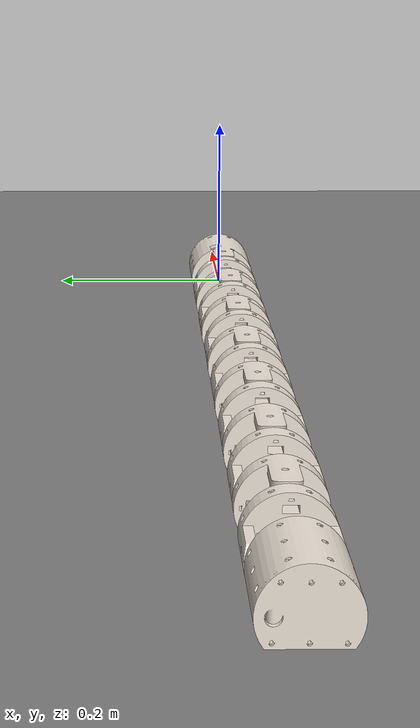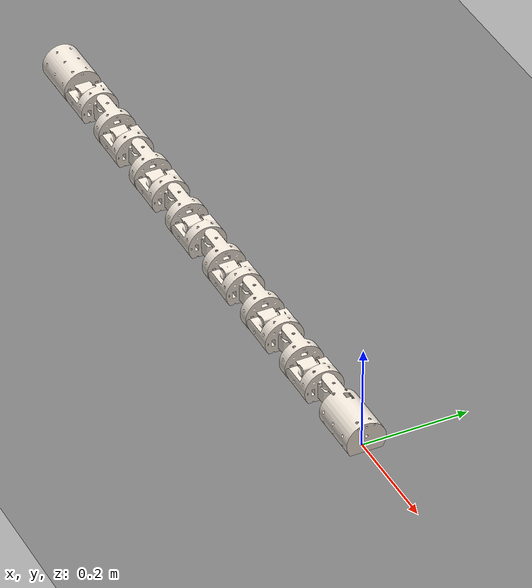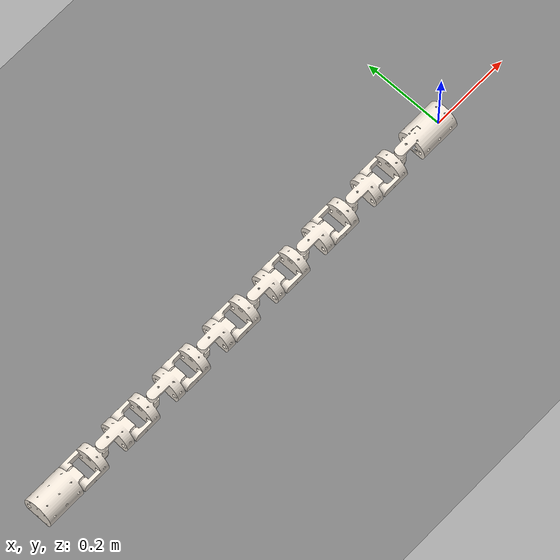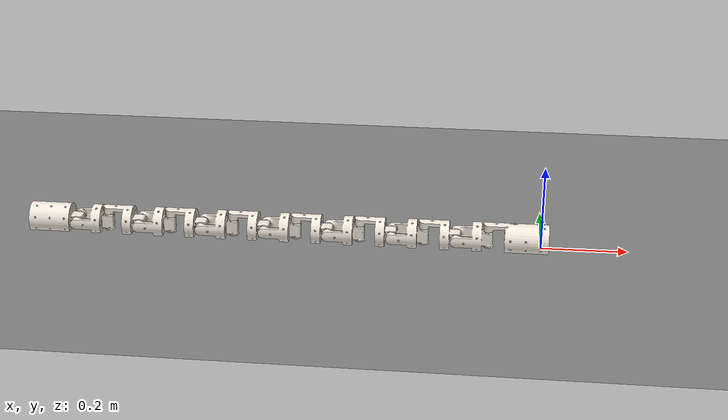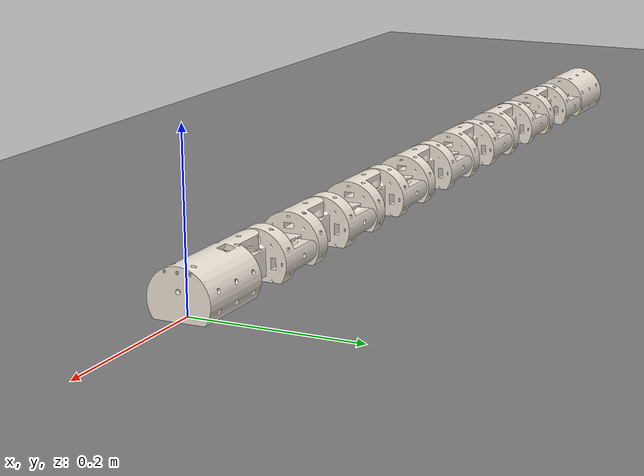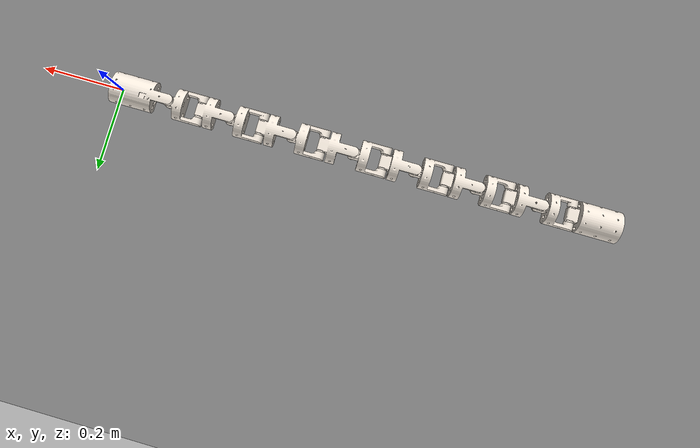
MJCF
<?xml version="1.0"?>

<mujoco model="14DOF-DW">
  <compiler angle="radian" coordinate="local" meshdir="meshes/" />
  <option timestep="0.002" gravity="0 0 -9.81"/>

  <asset>
    <texture type="skybox" builtin="flat" rgb1="1 1 1" rgb2=".9 .9 .9" width="128" height="128" />
    <texture name="floortex" type="2d" builtin="checker" rgb1=".1 .1 .1" rgb2=".9 .9 .9"
      width="512" height="512" mark="cross" markrgb=".8 .8 .8" />

    <!-- 定义材料，引用floortex纹理 -->
    <material name="floortex" texture="floortex" texuniform="true" reflectance="0.3" texrepeat="1 1"/>

    <mesh name="base_link" file="base_link.STL" />
    <mesh name="link1" file="link1.STL" />
    <mesh name="link2" file="link2.STL" />
    <mesh name="link3" file="link3.STL" />
    <mesh name="link4" file="link4.STL" />
    <mesh name="link5" file="link5.STL" />
    <mesh name="link6" file="link6.STL" />
    <mesh name="link7" file="link7.STL" />
    <mesh name="link8" file="link8.STL" />
    <mesh name="link9" file="link9.STL" />
    <mesh name="link10" file="link10.STL" />
    <mesh name="link11" file="link11.STL" />
    <mesh name="link12" file="link12.STL" />
    <mesh name="link13" file="link13.STL" />
    <mesh name="link14" file="link14.STL" />
    <mesh name="lw_link16" file="lw_link16.STL" />
    <mesh name="lw_link17" file="lw_link17.STL" />
    <mesh name="rw_link16" file="rw_link16.STL" />
    <mesh name="rw_link17" file="rw_link17.STL" />
    <mesh name="lw_link15" file="lw_link15.STL" />
    <mesh name="rw_link15" file="rw_link15.STL" />
    <mesh name="lw_link14" file="lw_link14.STL" />
    <mesh name="rw_link14" file="rw_link14.STL" />
    <mesh name="lw_link13" file="lw_link13.STL" />
    <mesh name="rw_link13" file="rw_link13.STL" />
    <mesh name="lw_link12" file="lw_link12.STL" />
    <mesh name="rw_link12" file="rw_link12.STL" />
    <mesh name="lw_link11" file="lw_link11.STL" />
    <mesh name="rw_link11" file="rw_link11.STL" />
    <mesh name="lw_link10" file="lw_link10.STL" />
    <mesh name="rw_link10" file="rw_link10.STL" />
    <mesh name="lw_link9" file="lw_link9.STL" />
    <mesh name="rw_link9" file="rw_link9.STL" />
    <mesh name="lw_link8" file="lw_link8.STL" />
    <mesh name="rw_link8" file="rw_link8.STL" />
    <mesh name="lw_link7" file="lw_link7.STL" />
    <mesh name="rw_link7" file="rw_link7.STL" />
    <mesh name="lw_link6" file="lw_link6.STL" />
    <mesh name="rw_link6" file="rw_link6.STL" />
    <mesh name="lw_link5" file="lw_link5.STL" />
    <mesh name="rw_link5" file="rw_link5.STL" />
    <mesh name="lw_link4" file="lw_link4.STL" />
    <mesh name="rw_link4" file="rw_link4.STL" />
    <mesh name="lw_link3" file="lw_link3.STL" />
    <mesh name="rw_link3" file="rw_link3.STL" />
    <mesh name="lw_link1" file="lw_link1.STL" />
    <mesh name="lw_link2" file="lw_link2.STL" />
    <mesh name="rw_link1" file="rw_link1.STL" />
    <mesh name="rw_link2" file="rw_link2.STL" />
    <material name="base_link_mat" rgba="0.95 0.91 0.86 1" specular="0" />
    <material name="link1_mat" rgba="0.95 0.91 0.86 1" specular="0" />
    <material name="link2_mat" rgba="0.95 0.91 0.86 1" specular="0" />
    <material name="link3_mat" rgba="0.95 0.91 0.86 1" specular="0" />
    <material name="link4_mat" rgba="0.95 0.91 0.86 1" specular="0" />
    <material name="link5_mat" rgba="0.95 0.91 0.86 1" specular="0" />
    <material name="link6_mat" rgba="0.95 0.91 0.86 1" specular="0" />
    <material name="link7_mat" rgba="0.95 0.91 0.86 1" specular="0" />
    <material name="link8_mat" rgba="0.95 0.91 0.86 1" specular="0" />
    <material name="link9_mat" rgba="0.95 0.91 0.86 1" specular="0" />
    <material name="link10_mat" rgba="0.95 0.91 0.86 1" specular="0" />
    <material name="link11_mat" rgba="0.95 0.91 0.86 1" specular="0" />
    <material name="link12_mat" rgba="0.95 0.91 0.86 1" specular="0" />
    <material name="link13_mat" rgba="0.95 0.91 0.86 1" specular="0" />
    <material name="link14_mat" rgba="0.95 0.91 0.86 1" specular="0" />
    <material name="lw_link16_mat" rgba="0 0 0 1" specular="0" />
    <material name="lw_link17_mat" rgba="0 0 0 1" specular="0" />
    <material name="rw_link16_mat" rgba="0 0 0 1" specular="0" />
    <material name="rw_link17_mat" rgba="0 0 0 1" specular="0" />
    <material name="lw_link15_mat" rgba="0 0 0 1" specular="0" />
    <material name="rw_link15_mat" rgba="0 0 0 1" specular="0" />
    <material name="lw_link14_mat" rgba="0 0 0 1" specular="0" />
    <material name="rw_link14_mat" rgba="0 0 0 1" specular="0" />
    <material name="lw_link13_mat" rgba="0 0 0 1" specular="0" />
    <material name="rw_link13_mat" rgba="0 0 0 1" specular="0" />
    <material name="lw_link12_mat" rgba="0 0 0 1" specular="0" />
    <material name="rw_link12_mat" rgba="0 0 0 1" specular="0" />
    <material name="lw_link11_mat" rgba="0 0 0 1" specular="0" />
    <material name="rw_link11_mat" rgba="0 0 0 1" specular="0" />
    <material name="lw_link10_mat" rgba="0 0 0 1" specular="0" />
    <material name="rw_link10_mat" rgba="0 0 0 1" specular="0" />
    <material name="lw_link9_mat" rgba="0 0 0 1" specular="0" />
    <material name="rw_link9_mat" rgba="0 0 0 1" specular="0" />
    <material name="lw_link8_mat" rgba="0 0 0 1" specular="0" />
    <material name="rw_link8_mat" rgba="0 0 0 1" specular="0" />
    <material name="lw_link7_mat" rgba="0 0 0 1" specular="0" />
    <material name="rw_link7_mat" rgba="0 0 0 1" specular="0" />
    <material name="lw_link6_mat" rgba="0 0 0 1" specular="0" />
    <material name="rw_link6_mat" rgba="0 0 0 1" specular="0" />
    <material name="lw_link5_mat" rgba="0 0 0 1" specular="0" />
    <material name="rw_link5_mat" rgba="0 0 0 1" specular="0" />
    <material name="lw_link4_mat" rgba="0 0 0 1" specular="0" />
    <material name="rw_link4_mat" rgba="0 0 0 1" specular="0" />
    <material name="lw_link3_mat" rgba="0 0 0 1" specular="0" />
    <material name="rw_link3_mat" rgba="0 0 0 1" specular="0" />
    <material name="lw_link1_mat" rgba="0 0 0 1" specular="0" />
    <material name="lw_link2_mat" rgba="0 0 0 1" specular="0" />
    <material name="rw_link1_mat" rgba="0 0 0 1" specular="0" />
    <material name="rw_link2_mat" rgba="0 0 0 1" specular="0" />
  </asset>

  <default>
    <default class="sts3215">
        <geom contype="0" conaffinity="0"/>
        <joint damping="0.60" frictionloss="0.052" armature="0.028"/>
        <position kp="17.8" kv="0.0" forcerange="-3.35 3.35"/>
    </default>
  </default>

  <worldbody>
    <!-- 地板 -->
    <geom name="floor" pos="0 0 0" size="10 10 .1" type="plane" material="floortex"
               condim="3" friction="0.8 0.1 0.1" density="0"/>
    <light directional="true" ambient=".3 .3 .3" pos="30 30 30" dir="0 -2 -1" diffuse=".5 .5 .5" specular=".5 .5 .5" />

    <!-- 蛇头 -->
    <body name="base_link" pos="0 0 0">
      <freejoint name="root_free"/>
      <inertial pos="-0.041134 -0.0002028 0.018962" mass="0.2198141" fullinertia="0.000069509 0.0002225 0.00026269 -0.0000000254 0.0000014287 -0.0000007786"/>
      <geom pos="0 0 0" group="1" contype="0" conaffinity="0" material="base_link_mat" type="mesh" mesh="base_link" />
      <geom pos="0 0 0" rgba="0.9373 0.2667 0.2667 1" group="3" contype="1" conaffinity="1" type="mesh" mesh="base_link" />
      <body name="link1" pos="-0.1240009 -0.0000155 0.0017799" quat="0.9999905 0.0043633 0 0">
        <joint name="yaw1" type="hinge" axis="0 0 1" limited="true" range="-1.57 1.57" damping="0.6" frictionloss="0.052"/>
        <inertial pos="-0.0330591 0.0001433 0.0179183" mass="0.1155196" fullinertia="0.0000632841 0.0000571429 0.0000713913 -0.0000000058 0.0000000989 -0.0000000003"/>
        <geom pos="0 0 0" group="1" contype="0" conaffinity="0" material="link1_mat" type="mesh" mesh="link1" />
        <geom pos="0 0 0" rgba="0.9373 0.2667 0.2667 1" group="3" contype="1" conaffinity="1" type="mesh" mesh="link1" />
        <body name="link2" pos="-0.07581 0.0183 0.01885" quat="0.7071001 0.7071001 0.0030853 0.0030853">
          <joint name="pitch1" type="hinge" axis="-0.0087265 0 0.9999619" limited="true" range="-1.57 1.57" damping="0.6" frictionloss="0.052"/>
          <inertial pos="-0.0321044 0.0006098 0.0179205" mass="0.11123" fullinertia="0.0000631062 0.0000543101 0.0000687183 0.0000000023 0.0000000501 -0.0000000003"/>
          <geom pos="0 0 0" group="1" contype="0" conaffinity="0" material="link2_mat" type="mesh" mesh="link2" />
          <geom pos="0 0 0" rgba="0.9373 0.2667 0.2667 1" group="3" contype="1" conaffinity="1" type="mesh" mesh="link2" />
          <body name="link3" pos="-0.0759716 -0.01885 0.0181877" quat="0.7040147 -0.7101583 -0.0000001 -0.0061973">
            <joint name="yaw2" type="hinge" axis="-0.0087259 -0.0087265 0.9999239" limited="true" range="-1.57 1.57" damping="0.6" frictionloss="0.052"/>
            <inertial pos="-0.0332143 0.0004869 0.017634" mass="0.1155196" fullinertia="0.000063283 0.000057144 0.0000713913 -0.0000000056 0.0000000281 -0.0000001247"/>
            <geom pos="0 0 0" group="1" contype="0" conaffinity="0" material="link3_mat" type="mesh" mesh="link3" />
            <geom pos="0 0 0" rgba="0.9373 0.2667 0.2667 1" group="3" contype="1" conaffinity="1" type="mesh" mesh="link3" />
            <body name="link4" pos="-0.075973 0.0186848 0.0183515" quat="0.7040147 0.7101583 0.0000001 0.0061973">
              <joint name="pitch2" type="hinge" axis="-0.0087265 0 0.9999619" limited="true" range="-1.57 1.57" damping="0.6" frictionloss="0.052"/>
              <inertial pos="-0.0321044 0.0006098 0.0179205" mass="0.11123" fullinertia="0.0000631062 0.0000543101 0.0000687183 0.0000000023 0.0000000501 -0.0000000003"/>
              <geom pos="0 0 0" group="1" contype="0" conaffinity="0" material="link4_mat" type="mesh" mesh="link4" />
              <geom pos="0 0 0" rgba="0.9373 0.2667 0.2667 1" group="3" contype="1" conaffinity="1" type="mesh" mesh="link4" />
              <body name="link5" pos="-0.0759716 -0.01885 0.0181877" quat="0.7040147 -0.7101583 -0.0000001 -0.0061973">
                <joint name="yaw3" type="hinge" axis="-0.0087259 -0.0087265 0.9999239" limited="true" range="-1.57 1.57" damping="0.6" frictionloss="0.052"/>
                <inertial pos="-0.0332143 0.0004869 0.017634" mass="0.1155196" fullinertia="0.000063283 0.000057144 0.0000713913 -0.0000000056 0.0000000281 -0.0000001247"/>
                <geom pos="0 0 0" group="1" contype="0" conaffinity="0" material="link5_mat" type="mesh" mesh="link5" />
                <geom pos="0 0 0" rgba="0.9373 0.2667 0.2667 1" group="3" contype="1" conaffinity="1" type="mesh" mesh="link5" />
                <body name="link6" pos="-0.0759696 0.0186883 0.0179544" quat="0.7040147 0.7101583 0.0000001 0.0061973">
                  <joint name="pitch3" type="hinge" axis="-0.0087265 0 0.9999619" limited="true" range="-1.57 1.57" damping="0.6" frictionloss="0.052"/>
                  <inertial pos="-0.0321044 0.001007 0.0179205" mass="0.11123" fullinertia="0.0000631062 0.0000543101 0.0000687183 0.0000000023 0.0000000501 -0.0000000003"/>
                  <geom pos="0 0 0" group="1" contype="0" conaffinity="0" material="link6_mat" type="mesh" mesh="link6" />
                  <geom pos="0 0 0" rgba="0.9373 0.2667 0.2667 1" group="3" contype="1" conaffinity="1" type="mesh" mesh="link6" />
                  <body name="link7" pos="-0.0759716 -0.0184528 0.0181877" quat="0.7040147 -0.7101583 -0.0000001 -0.0061973">
                    <joint name="yaw4" type="hinge" axis="-0.0087259 -0.0087265 0.9999239" limited="true" range="-1.57 1.57" damping="0.6" frictionloss="0.052"/>
                    <inertial pos="-0.0332143 0.0004869 0.017634" mass="0.1155196" fullinertia="0.000063283 0.000057144 0.0000713913 -0.0000000056 0.0000000281 -0.0000001247"/>
                    <geom pos="0 0 0" group="1" contype="0" conaffinity="0" material="link7_mat" type="mesh" mesh="link7" />
                    <geom pos="0 0 0" rgba="0.9373 0.2667 0.2667 1" group="3" contype="1" conaffinity="1" type="mesh" mesh="link7" />
                    <body name="link8" pos="-0.0759696 0.0186883 0.0179544" quat="0.7040147 0.7101583 0.0000001 0.0061973">
                      <joint name="pitch4" type="hinge" axis="-0.0087265 0 0.9999619" limited="true" range="-1.57 1.57" damping="0.6" frictionloss="0.052"/>
                      <inertial pos="-0.0321044 0.001007 0.0179205" mass="0.11123" fullinertia="0.0000631062 0.0000543101 0.0000687183 0.0000000023 0.0000000501 -0.0000000003"/>
                      <geom pos="0 0 0" group="1" contype="0" conaffinity="0" material="link8_mat" type="mesh" mesh="link8" />
                      <geom pos="0 0 0" rgba="0.9373 0.2667 0.2667 1" group="3" contype="1" conaffinity="1" type="mesh" mesh="link8" />
                      <body name="link9" pos="-0.0759716 -0.0184528 0.0181877" quat="0.7040147 -0.7101583 -0.0000001 -0.0061973">
                        <joint name="yaw5" type="hinge" axis="-0.0087259 -0.0087265 0.9999239" limited="true" range="-1.57 1.57" damping="0.6" frictionloss="0.052"/>
                        <inertial pos="-0.0332143 0.0004869 0.017634" mass="0.1155196" fullinertia="0.000063283 0.000057144 0.0000713913 -0.0000000056 0.0000000281 -0.0000001247"/>
                        <geom pos="0 0 0" group="1" contype="0" conaffinity="0" material="link9_mat" type="mesh" mesh="link9" />
                        <geom pos="0 0 0" rgba="0.9373 0.2667 0.2667 1" group="3" contype="1" conaffinity="1" type="mesh" mesh="link9" />
                        <body name="link10" pos="-0.0759696 0.0186883 0.0179544" quat="0.7040147 0.7101583 0.0000001 0.0061973">
                          <joint name="pitch5" type="hinge" axis="-0.0087265 0 0.9999619" limited="true" range="-1.57 1.57" damping="0.6" frictionloss="0.052"/>
                          <inertial pos="-0.0321044 0.001007 0.0179205" mass="0.11123" fullinertia="0.0000631062 0.0000543101 0.0000687183 0.0000000023 0.0000000501 -0.0000000003"/>
                          <geom pos="0 0 0" group="1" contype="0" conaffinity="0" material="link10_mat" type="mesh" mesh="link10" />
                          <geom pos="0 0 0" rgba="0.9373 0.2667 0.2667 1" group="3" contype="1" conaffinity="1" type="mesh" mesh="link10" />
                          <body name="link11" pos="-0.0759716 -0.0184528 0.0181877" quat="0.7040147 -0.7101583 -0.0000001 -0.0061973">
                            <joint name="yaw6" type="hinge" axis="-0.0087259 -0.0087265 0.9999239" limited="true" range="-1.57 1.57" damping="0.6" frictionloss="0.052"/>
                            <inertial pos="-0.0332143 0.0004869 0.017634" mass="0.1155196" fullinertia="0.000063283 0.000057144 0.0000713913 -0.0000000056 0.0000000281 -0.0000001247"/>
                            <geom pos="0 0 0" group="1" contype="0" conaffinity="0" material="link11_mat" type="mesh" mesh="link11" />
                            <geom pos="0 0 0" rgba="0.9373 0.2667 0.2667 1" group="3" contype="1" conaffinity="1" type="mesh" mesh="link11" />
                            <body name="link12" pos="-0.0759696 0.0186883 0.0179544" quat="0.7040147 0.7101583 0.0000001 0.0061973">
                              <joint name="pitch6" type="hinge" axis="-0.0087265 0 0.9999619" limited="true" range="-1.57 1.57" damping="0.6" frictionloss="0.052"/>
                              <inertial pos="-0.0321044 0.001007 0.0179205" mass="0.11123" fullinertia="0.0000631062 0.0000543101 0.0000687183 0.0000000023 0.0000000501 -0.0000000003"/>
                              <geom pos="0 0 0" group="1" contype="0" conaffinity="0" material="link12_mat" type="mesh" mesh="link12" />
                              <geom pos="0 0 0" rgba="0.9373 0.2667 0.2667 1" group="3" contype="1" conaffinity="1" type="mesh" mesh="link12" />
                              <body name="link13" pos="-0.0759716 -0.0184528 0.0181877" quat="0.7040147 -0.7101583 -0.0000001 -0.0061973">
                                <joint name="yaw7" type="hinge" axis="-0.0087259 -0.0087265 0.9999239" limited="true" range="-1.57 1.57" damping="0.6" frictionloss="0.052"/>
                                <inertial pos="-0.0332143 0.0004869 0.017634" mass="0.1155196" fullinertia="0.000063283 0.000057144 0.0000713913 -0.0000000056 0.0000000281 -0.0000001247"/>
                                <geom pos="0 0 0" group="1" contype="0" conaffinity="0" material="link13_mat" type="mesh" mesh="link13" />
                                <geom pos="0 0 0" rgba="0.9373 0.2667 0.2667 1" group="3" contype="1" conaffinity="1" type="mesh" mesh="link13" />
                                <body name="link14" pos="-0.0759696 0.0186883 0.0179544" quat="0.7040147 0.7101583 0.0000001 0.0061973">
                                  <joint name="pitch7" type="hinge" axis="-0.0087265 0 0.9999619" limited="true" range="-1.57 1.57" damping="0.6" frictionloss="0.052"/>
                                  <inertial pos="-0.0622382 0.0019004 0.0184409" mass="0.3486692" fullinertia="0.0001824671 0.0002798143 0.0002726189 0.0000004426 0.0000004295 -0.0000001042"/>
                                  <geom pos="0 0 0" group="1" contype="0" conaffinity="0" material="link14_mat" type="mesh" mesh="link14" />
                                  <geom pos="0 0 0" rgba="0.9373 0.2667 0.2667 1" group="3" contype="1" conaffinity="1" type="mesh" mesh="link14" />
                                  <body name="lw_link16" pos="-0.0268102 -0.0491028 -0.000884" quat="0.704008 -0.7101786 -0.0030718 -0.0030988">
                                    <joint name="lw_joint16" type="hinge" axis="0 0.9999619 0.0087265" damping="0" frictionloss="0"/>
                                    <inertial pos="0 -0.0029332 -0.0000256" mass="0.0014137" fullinertia="0.0000000318 0.0000000526 0.0000000318 0 0 0.0000000002"/>
                                    <geom pos="0 0 0" group="1" contype="0" conaffinity="0" material="lw_link16_mat" type="mesh" mesh="lw_link16" />
                                    <geom pos="0 0 0" rgba="0.9373 0.2667 0.2667 1" group="3" contype="1" conaffinity="1" type="mesh" mesh="lw_link16" />
                                  </body>
                                  <body name="lw_link17" pos="-0.0970937 -0.0491028 -0.0014973" quat="0.704008 -0.7101786 -0.0030718 -0.0030988">
                                    <joint name="lw_joint17" type="hinge" axis="0 0.9999619 0.0087265" damping="0" frictionloss="0"/>
                                    <inertial pos="0 -0.0029332 -0.0000256" mass="0.0014137" fullinertia="0.0000000318 0.0000000526 0.0000000318 0 0 0.0000000002"/>
                                    <geom pos="0 0 0" group="1" contype="0" conaffinity="0" material="lw_link17_mat" type="mesh" mesh="lw_link17" />
                                    <geom pos="0 0 0" rgba="0.9373 0.2667 0.2667 1" group="3" contype="1" conaffinity="1" type="mesh" mesh="lw_link17" />
                                  </body>
                                  <body name="rw_link16" pos="-0.0271506 -0.0491028 0.0381145" quat="0.704008 -0.7101786 -0.0030718 -0.0030988">
                                    <joint name="rw_joint16" type="hinge" axis="0 0.9999619 0.0087265" damping="0" frictionloss="0"/>
                                    <inertial pos="0 0.0029332 0.0000256" mass="0.0014137" fullinertia="0.0000000318 0.0000000526 0.0000000318 0 0 0.0000000002"/>
                                    <geom pos="0 0 0" group="1" contype="0" conaffinity="0" material="rw_link16_mat" type="mesh" mesh="rw_link16" />
                                    <geom pos="0 0 0" rgba="0.9373 0.2667 0.2667 1" group="3" contype="1" conaffinity="1" type="mesh" mesh="rw_link16" />
                                  </body>
                                  <body name="rw_link17" pos="-0.0974341 -0.0491028 0.0375012" quat="0.704008 -0.7101786 -0.0030718 -0.0030988">
                                    <joint name="rw_joint17" type="hinge" axis="0 0.9999619 0.0087265" damping="0" frictionloss="0"/>
                                    <inertial pos="0 0.0029332 0.0000256" mass="0.0014137" fullinertia="0.0000000318 0.0000000526 0.0000000318 0 0 0.0000000002"/>
                                    <geom pos="0 0 0" group="1" contype="0" conaffinity="0" material="rw_link17_mat" type="mesh" mesh="rw_link17" />
                                    <geom pos="0 0 0" rgba="0.9373 0.2667 0.2667 1" group="3" contype="1" conaffinity="1" type="mesh" mesh="rw_link17" />
                                  </body>
                                </body>
                                <body name="lw_link15" pos="-0.0265509 0.0203686 -0.0306034" quat="0.9999905 0 -0.0043631 0">
                                  <joint name="lw_joint15" type="hinge" axis="0 0.9999619 0.0087265" damping="0" frictionloss="0"/>
                                  <inertial pos="0 -0.0029323 -0.0001284" mass="0.0014137" fullinertia="0.0000000318 0.0000000526 0.0000000318 0 0 0.0000000002"/>
                                  <geom pos="0 0 0" group="1" contype="0" conaffinity="0" material="lw_link15_mat" type="mesh" mesh="lw_link15" />
                                  <geom pos="0 0 0" rgba="0.9373 0.2667 0.2667 1" group="3" contype="1" conaffinity="1" type="mesh" mesh="lw_link15" />
                                </body>
                                <body name="rw_link15" pos="-0.0265479 -0.0186299 -0.0309437" quat="0.9999905 0 -0.0043631 0">
                                  <joint name="rw_joint15" type="hinge" axis="0 0.9999619 0.0087265" damping="0" frictionloss="0"/>
                                  <inertial pos="0 0.0029341 -0.0000772" mass="0.0014137" fullinertia="0.0000000318 0.0000000526 0.0000000318 0 0 0.0000000002"/>
                                  <geom pos="0 0 0" group="1" contype="0" conaffinity="0" material="rw_link15_mat" type="mesh" mesh="rw_link15" />
                                  <geom pos="0 0 0" rgba="0.9373 0.2667 0.2667 1" group="3" contype="1" conaffinity="1" type="mesh" mesh="rw_link15" />
                                </body>
                              </body>
                              <body name="lw_link14" pos="-0.0268059 -0.0491028 -0.001384" quat="0.704008 -0.7101786 -0.0030718 -0.0030988">
                                <joint name="lw_joint14" type="hinge" axis="0 0.9999619 0.0087265" damping="0" frictionloss="0"/>
                                <inertial pos="0 -0.0029332 -0.0000256" mass="0.0014137" fullinertia="0.0000000318 0.0000000526 0.0000000318 0 0 0.0000000002"/>
                                <geom pos="0 0 0" group="1" contype="0" conaffinity="0" material="lw_link14_mat" type="mesh" mesh="lw_link14" />
                                <geom pos="0 0 0" rgba="0.9373 0.2667 0.2667 1" group="3" contype="1" conaffinity="1" type="mesh" mesh="lw_link14" />
                              </body>
                              <body name="rw_link14" pos="-0.0271462 -0.0491028 0.0376145" quat="0.704008 -0.7101786 -0.0030718 -0.0030988">
                                <joint name="rw_joint14" type="hinge" axis="0 0.9999619 0.0087265" damping="0" frictionloss="0"/>
                                <inertial pos="0 0.0029332 0.0000256" mass="0.0014137" fullinertia="0.0000000318 0.0000000526 0.0000000318 0 0 0.0000000002"/>
                                <geom pos="0 0 0" group="1" contype="0" conaffinity="0" material="rw_link14_mat" type="mesh" mesh="rw_link14" />
                                <geom pos="0 0 0" rgba="0.9373 0.2667 0.2667 1" group="3" contype="1" conaffinity="1" type="mesh" mesh="rw_link14" />
                              </body>
                            </body>
                            <body name="lw_link13" pos="-0.0265509 0.0203686 -0.0306034" quat="0.9999905 0 -0.0043631 0">
                              <joint name="lw_joint13" type="hinge" axis="0 0.9999619 0.0087265" damping="0" frictionloss="0"/>
                              <inertial pos="0 -0.0029323 -0.0001284" mass="0.0014137" fullinertia="0.0000000318 0.0000000526 0.0000000318 0 0 0.0000000002"/>
                              <geom pos="0 0 0" group="1" contype="0" conaffinity="0" material="lw_link13_mat" type="mesh" mesh="lw_link13" />
                              <geom pos="0 0 0" rgba="0.9373 0.2667 0.2667 1" group="3" contype="1" conaffinity="1" type="mesh" mesh="lw_link13" />
                            </body>
                            <body name="rw_link13" pos="-0.0265479 -0.0186299 -0.0309437" quat="0.9999905 0 -0.0043631 0">
                              <joint name="rw_joint13" type="hinge" axis="0 0.9999619 0.0087265" damping="0" frictionloss="0"/>
                              <inertial pos="0 0.0029341 -0.0000772" mass="0.0014137" fullinertia="0.0000000318 0.0000000526 0.0000000318 0 0 0.0000000002"/>
                              <geom pos="0 0 0" group="1" contype="0" conaffinity="0" material="rw_link13_mat" type="mesh" mesh="rw_link13" />
                              <geom pos="0 0 0" rgba="0.9373 0.2667 0.2667 1" group="3" contype="1" conaffinity="1" type="mesh" mesh="rw_link13" />
                            </body>
                          </body>
                          <body name="lw_link12" pos="-0.0268059 -0.0491028 -0.001384" quat="0.704008 -0.7101786 -0.0030718 -0.0030988">
                            <joint name="lw_joint12" type="hinge" axis="0 0.9999619 0.0087265" damping="0" frictionloss="0"/>
                            <inertial pos="0 -0.0029332 -0.0000256" mass="0.0014137" fullinertia="0.0000000318 0.0000000526 0.0000000318 0 0 0.0000000002"/>
                            <geom pos="0 0 0" group="1" contype="0" conaffinity="0" material="lw_link12_mat" type="mesh" mesh="lw_link12" />
                            <geom pos="0 0 0" rgba="0.9373 0.2667 0.2667 1" group="3" contype="1" conaffinity="1" type="mesh" mesh="lw_link12" />
                          </body>
                          <body name="rw_link12" pos="-0.0271462 -0.0491028 0.0376145" quat="0.704008 -0.7101786 -0.0030718 -0.0030988">
                            <joint name="rw_joint12" type="hinge" axis="0 0.9999619 0.0087265" damping="0" frictionloss="0"/>
                            <inertial pos="0 0.0029332 0.0000256" mass="0.0014137" fullinertia="0.0000000318 0.0000000526 0.0000000318 0 0 0.0000000002"/>
                            <geom pos="0 0 0" group="1" contype="0" conaffinity="0" material="rw_link12_mat" type="mesh" mesh="rw_link12" />
                            <geom pos="0 0 0" rgba="0.9373 0.2667 0.2667 1" group="3" contype="1" conaffinity="1" type="mesh" mesh="rw_link12" />
                          </body>
                        </body>
                        <body name="lw_link11" pos="-0.0265509 0.0203686 -0.0306034" quat="0.9999905 0 -0.0043631 0">
                          <joint name="lw_joint11" type="hinge" axis="0 0.9999619 0.0087265" damping="0" frictionloss="0"/>
                          <inertial pos="0 -0.0029323 -0.0001284" mass="0.0014137" fullinertia="0.0000000318 0.0000000526 0.0000000318 0 0 0.0000000002"/>
                          <geom pos="0 0 0" group="1" contype="0" conaffinity="0" material="lw_link11_mat" type="mesh" mesh="lw_link11" />
                          <geom pos="0 0 0" rgba="0.9373 0.2667 0.2667 1" group="3" contype="1" conaffinity="1" type="mesh" mesh="lw_link11" />
                        </body>
                        <body name="rw_link11" pos="-0.0265479 -0.0186299 -0.0309437" quat="0.9999905 0 -0.0043631 0">
                          <joint name="rw_joint11" type="hinge" axis="0 0.9999619 0.0087265" damping="0" frictionloss="0"/>
                          <inertial pos="0 0.0029341 -0.0000772" mass="0.0014137" fullinertia="0.0000000318 0.0000000526 0.0000000318 0 0 0.0000000002"/>
                          <geom pos="0 0 0" group="1" contype="0" conaffinity="0" material="rw_link11_mat" type="mesh" mesh="rw_link11" />
                          <geom pos="0 0 0" rgba="0.9373 0.2667 0.2667 1" group="3" contype="1" conaffinity="1" type="mesh" mesh="rw_link11" />
                        </body>
                      </body>
                      <body name="lw_link10" pos="-0.0268059 -0.0491028 -0.001384" quat="0.704008 -0.7101786 -0.0030718 -0.0030988">
                        <joint name="lw_joint10" type="hinge" axis="0 0.9999619 0.0087265" damping="0" frictionloss="0"/>
                        <inertial pos="0 -0.0029332 -0.0000256" mass="0.0014137" fullinertia="0.0000000318 0.0000000526 0.0000000318 0 0 0.0000000002"/>
                        <geom pos="0 0 0" group="1" contype="0" conaffinity="0" material="lw_link10_mat" type="mesh" mesh="lw_link10" />
                        <geom pos="0 0 0" rgba="0.9373 0.2667 0.2667 1" group="3" contype="1" conaffinity="1" type="mesh" mesh="lw_link10" />
                      </body>
                      <body name="rw_link10" pos="-0.0271462 -0.0491028 0.0376145" quat="0.704008 -0.7101786 -0.0030718 -0.0030988">
                        <joint name="rw_joint10" type="hinge" axis="0 0.9999619 0.0087265" damping="0" frictionloss="0"/>
                        <inertial pos="0 0.0029332 0.0000256" mass="0.0014137" fullinertia="0.0000000318 0.0000000526 0.0000000318 0 0 0.0000000002"/>
                        <geom pos="0 0 0" group="1" contype="0" conaffinity="0" material="rw_link10_mat" type="mesh" mesh="rw_link10" />
                        <geom pos="0 0 0" rgba="0.9373 0.2667 0.2667 1" group="3" contype="1" conaffinity="1" type="mesh" mesh="rw_link10" />
                      </body>
                    </body>
                    <body name="lw_link9" pos="-0.0265509 0.0203686 -0.0306034" quat="0.9999905 0 -0.0043631 0">
                      <joint name="lw_joint9" type="hinge" axis="0 0.9999619 0.0087265" damping="0" frictionloss="0"/>
                      <inertial pos="0 -0.0029323 -0.0001284" mass="0.0014137" fullinertia="0.0000000318 0.0000000526 0.0000000318 0 0 0.0000000002"/>
                      <geom pos="0 0 0" group="1" contype="0" conaffinity="0" material="lw_link9_mat" type="mesh" mesh="lw_link9" />
                      <geom pos="0 0 0" rgba="0.9373 0.2667 0.2667 1" group="3" contype="1" conaffinity="1" type="mesh" mesh="lw_link9" />
                    </body>
                    <body name="rw_link9" pos="-0.0265479 -0.0186299 -0.0309437" quat="0.9999905 0 -0.0043631 0">
                      <joint name="rw_joint9" type="hinge" axis="0 0.9999619 0.0087265" damping="0" frictionloss="0"/>
                      <inertial pos="0 0.0029341 -0.0000772" mass="0.0014137" fullinertia="0.0000000318 0.0000000526 0.0000000318 0 0 0.0000000002"/>
                      <geom pos="0 0 0" group="1" contype="0" conaffinity="0" material="rw_link9_mat" type="mesh" mesh="rw_link9" />
                      <geom pos="0 0 0" rgba="0.9373 0.2667 0.2667 1" group="3" contype="1" conaffinity="1" type="mesh" mesh="rw_link9" />
                    </body>
                  </body>
                  <body name="lw_link8" pos="-0.0268059 -0.0491028 -0.001384" quat="0.704008 -0.7101786 -0.0030718 -0.0030988">
                    <joint name="lw_joint8" type="hinge" axis="0 0.9999619 0.0087265" damping="0" frictionloss="0"/>
                    <inertial pos="0 -0.0029332 -0.0000256" mass="0.0014137" fullinertia="0.0000000318 0.0000000526 0.0000000318 0 0 0.0000000002"/>
                    <geom pos="0 0 0" group="1" contype="0" conaffinity="0" material="lw_link8_mat" type="mesh" mesh="lw_link8" />
                    <geom pos="0 0 0" rgba="0.9373 0.2667 0.2667 1" group="3" contype="1" conaffinity="1" type="mesh" mesh="lw_link8" />
                  </body>
                  <body name="rw_link8" pos="-0.0271462 -0.0491028 0.0376145" quat="0.704008 -0.7101786 -0.0030718 -0.0030988">
                    <joint name="rw_joint8" type="hinge" axis="0 0.9999619 0.0087265" damping="0" frictionloss="0"/>
                    <inertial pos="0 0.0029332 0.0000256" mass="0.0014137" fullinertia="0.0000000318 0.0000000526 0.0000000318 0 0 0.0000000002"/>
                    <geom pos="0 0 0" group="1" contype="0" conaffinity="0" material="rw_link8_mat" type="mesh" mesh="rw_link8" />
                    <geom pos="0 0 0" rgba="0.9373 0.2667 0.2667 1" group="3" contype="1" conaffinity="1" type="mesh" mesh="rw_link8" />
                  </body>
                </body>
                <body name="lw_link7" pos="-0.0265509 0.0203686 -0.0306034" quat="0.9999905 0 -0.0043631 0">
                  <joint name="lw_joint7" type="hinge" axis="0 0.9999619 0.0087265" damping="0" frictionloss="0"/>
                  <inertial pos="0 -0.0029323 -0.0001284" mass="0.0014137" fullinertia="0.0000000318 0.0000000526 0.0000000318 0 0 0.0000000002"/>
                  <geom pos="0 0 0" group="1" contype="0" conaffinity="0" material="lw_link7_mat" type="mesh" mesh="lw_link7" />
                  <geom pos="0 0 0" rgba="0.9373 0.2667 0.2667 1" group="3" contype="1" conaffinity="1" type="mesh" mesh="lw_link7" />
                </body>
                <body name="rw_link7" pos="-0.0265479 -0.0186299 -0.0309437" quat="0.9999905 0 -0.0043631 0">
                  <joint name="rw_joint7" type="hinge" axis="0 0.9999619 0.0087265" damping="0" frictionloss="0"/>
                  <inertial pos="0 0.0029341 -0.0000772" mass="0.0014137" fullinertia="0.0000000318 0.0000000526 0.0000000318 0 0 0.0000000002"/>
                  <geom pos="0 0 0" group="1" contype="0" conaffinity="0" material="rw_link7_mat" type="mesh" mesh="rw_link7" />
                  <geom pos="0 0 0" rgba="0.9373 0.2667 0.2667 1" group="3" contype="1" conaffinity="1" type="mesh" mesh="rw_link7" />
                </body>
              </body>
              <body name="lw_link6" pos="-0.0268059 -0.0495 -0.001384" quat="0.704008 -0.7101786 -0.0030718 -0.0030988">
                <joint name="lw_joint6" type="hinge" axis="0 0.9999619 0.0087265" damping="0" frictionloss="0"/>
                <inertial pos="0 -0.0029332 -0.0000256" mass="0.0014137" fullinertia="0.0000000318 0.0000000526 0.0000000318 0 0 0.0000000002"/>
                <geom pos="0 0 0" group="1" contype="0" conaffinity="0" material="lw_link6_mat" type="mesh" mesh="lw_link6" />
                <geom pos="0 0 0" rgba="0.9373 0.2667 0.2667 1" group="3" contype="1" conaffinity="1" type="mesh" mesh="lw_link6" />
              </body>
              <body name="rw_link6" pos="-0.0271462 -0.0495 0.0376145" quat="0.704008 -0.7101786 -0.0030718 -0.0030988">
                <joint name="rw_joint6" type="hinge" axis="0 0.9999619 0.0087265" damping="0" frictionloss="0"/>
                <inertial pos="0 0.0029332 0.0000256" mass="0.0014137" fullinertia="0.0000000318 0.0000000526 0.0000000318 0 0 0.0000000002"/>
                <geom pos="0 0 0" group="1" contype="0" conaffinity="0" material="rw_link6_mat" type="mesh" mesh="rw_link6" />
                <geom pos="0 0 0" rgba="0.9373 0.2667 0.2667 1" group="3" contype="1" conaffinity="1" type="mesh" mesh="rw_link6" />
              </body>
            </body>
            <body name="lw_link5" pos="-0.0265543 0.0198652 -0.0302107" quat="0.9999905 0 -0.0043631 0">
              <joint name="lw_joint5" type="hinge" axis="0 0.9999619 0.0087265" damping="0" frictionloss="0"/>
              <inertial pos="0 -0.0024289 -0.0005212" mass="0.0014137" fullinertia="0.0000000318 0.0000000526 0.0000000318 0 0 0.0000000002"/>
              <geom pos="0 0 0" group="1" contype="0" conaffinity="0" material="lw_link5_mat" type="mesh" mesh="lw_link5" />
              <geom pos="0 0 0" rgba="0.9373 0.2667 0.2667 1" group="3" contype="1" conaffinity="1" type="mesh" mesh="lw_link5" />
            </body>
            <body name="rw_link5" pos="-0.0265513 -0.0191333 -0.030551" quat="0.9999905 0 -0.0043631 0">
              <joint name="rw_joint5" type="hinge" axis="0 0.9999619 0.0087265" damping="0" frictionloss="0"/>
              <inertial pos="0 0.0034376 -0.00047" mass="0.0014137" fullinertia="0.0000000318 0.0000000526 0.0000000318 0 0 0.0000000002"/>
              <geom pos="0 0 0" group="1" contype="0" conaffinity="0" material="rw_link5_mat" type="mesh" mesh="rw_link5" />
              <geom pos="0 0 0" rgba="0.9373 0.2667 0.2667 1" group="3" contype="1" conaffinity="1" type="mesh" mesh="rw_link5" />
            </body>
          </body>
          <body name="lw_link4" pos="-0.0268059 -0.0495 -0.001384" quat="0.704008 -0.7101786 -0.0030718 -0.0030988">
            <joint name="lw_joint4" type="hinge" axis="0 0.9999619 0.0087265" damping="0" frictionloss="0"/>
            <inertial pos="0 -0.0029332 -0.0000256" mass="0.0014137" fullinertia="0.0000000318 0.0000000526 0.0000000318 0 0 0.0000000002"/>
            <geom pos="0 0 0" group="1" contype="0" conaffinity="0" material="lw_link4_mat" type="mesh" mesh="lw_link4" />
            <geom pos="0 0 0" rgba="0.9373 0.2667 0.2667 1" group="3" contype="1" conaffinity="1" type="mesh" mesh="lw_link4" />
          </body>
          <body name="rw_link4" pos="-0.0271462 -0.0495 0.0376145" quat="0.704008 -0.7101786 -0.0030718 -0.0030988">
            <joint name="rw_joint4" type="hinge" axis="0 0.9999619 0.0087265" damping="0" frictionloss="0"/>
            <inertial pos="0 0.0029332 0.0000256" mass="0.0014137" fullinertia="0.0000000318 0.0000000526 0.0000000318 0 0 0.0000000002"/>
            <geom pos="0 0 0" group="1" contype="0" conaffinity="0" material="rw_link4_mat" type="mesh" mesh="rw_link4" />
            <geom pos="0 0 0" rgba="0.9373 0.2667 0.2667 1" group="3" contype="1" conaffinity="1" type="mesh" mesh="rw_link4" />
          </body>
        </body>
        <body name="lw_link3" pos="-0.0268169 0.0196028 -0.03015" quat="0.9999905 -0.0043633 0 0">
          <joint name="lw_joint3" type="hinge" axis="0 0.9999619 0.0087265" damping="0" frictionloss="0"/>
          <inertial pos="0 -0.0029289 -0.0005256" mass="0.0014137" fullinertia="0.0000000318 0.0000000526 0.0000000318 0 0 0.0000000002"/>
          <geom pos="0 0 0" group="1" contype="0" conaffinity="0" material="lw_link3_mat" type="mesh" mesh="lw_link3" />
          <geom pos="0 0 0" rgba="0.9373 0.2667 0.2667 1" group="3" contype="1" conaffinity="1" type="mesh" mesh="lw_link3" />
        </body>
        <body name="rw_link3" pos="-0.0268169 -0.0193972 -0.03015" quat="0.9999905 -0.0043633 0 0">
          <joint name="rw_joint3" type="hinge" axis="0 0.9999619 0.0087265" damping="0" frictionloss="0"/>
          <inertial pos="0 0.0029376 -0.0004744" mass="0.0014137" fullinertia="0.0000000318 0.0000000526 0.0000000318 0 0 0.0000000002"/>
          <geom pos="0 0 0" group="1" contype="0" conaffinity="0" material="rw_link3_mat" type="mesh" mesh="rw_link3" />
          <geom pos="0 0 0" rgba="0.9373 0.2667 0.2667 1" group="3" contype="1" conaffinity="1" type="mesh" mesh="rw_link3" />
        </body>
      </body>
      <body name="lw_link1" pos="-0.0022578 0.0197512 -0.0286987">
        <joint name="lw_joint1" type="hinge" axis="0 0.9999619 0.0087265" damping="0" frictionloss="0"/>
        <inertial pos="0 -0.0029332 -0.0000256" mass="0.0014137" fullinertia="0.0000000318 0.0000000526 0.0000000318 0 0 0.0000000002"/>
        <geom pos="0 0 0" group="1" contype="0" conaffinity="0" material="lw_link1_mat" type="mesh" mesh="lw_link1" />
        <geom pos="0 0 0" rgba="0.9373 0.2667 0.2667 1" group="3" contype="1" conaffinity="1" type="mesh" mesh="lw_link1" />
      </body>
      <body name="lw_link2" pos="-0.0722578 0.0197512 -0.0286987">
        <joint name="lw_joint2" type="hinge" axis="0 0.9999619 0.0087265" damping="0" frictionloss="0"/>
        <inertial pos="0 -0.0029332 -0.0000256" mass="0.0014137" fullinertia="0.0000000318 0.0000000526 0.0000000318 0 0 0.0000000002"/>
        <geom pos="0 0 0" group="1" contype="0" conaffinity="0" material="lw_link2_mat" type="mesh" mesh="lw_link2" />
        <geom pos="0 0 0" rgba="0.9373 0.2667 0.2667 1" group="3" contype="1" conaffinity="1" type="mesh" mesh="lw_link2" />
      </body>
      <body name="rw_link1" pos="-0.0022578 -0.0192473 -0.0290391">
        <joint name="rw_joint1" type="hinge" axis="0 0.9999619 0.0087265" damping="0" frictionloss="0"/>
        <inertial pos="0 0.0029332 0.0000256" mass="0.0014137" fullinertia="0.0000000318 0.0000000526 0.0000000318 0 0 0.0000000002"/>
        <geom pos="0 0 0" group="1" contype="0" conaffinity="0" material="rw_link1_mat" type="mesh" mesh="rw_link1" />
        <geom pos="0 0 0" rgba="0.9373 0.2667 0.2667 1" group="3" contype="1" conaffinity="1" type="mesh" mesh="rw_link1" />
      </body>
      <body name="rw_link2" pos="-0.0722578 -0.0192473 -0.0290391">
        <joint name="rw_joint2" type="hinge" axis="0 0.9999619 0.0087265" damping="0" frictionloss="0"/>
        <inertial pos="0 0.0029332 0.0000256" mass="0.0014137" fullinertia="0.0000000318 0.0000000526 0.0000000318 0 0 0.0000000002"/>
        <geom pos="0 0 0" group="1" contype="0" conaffinity="0" material="rw_link2_mat" type="mesh" mesh="rw_link2" />
        <geom pos="0 0 0" rgba="0.9373 0.2667 0.2667 1" group="3" contype="1" conaffinity="1" type="mesh" mesh="rw_link2" />
      </body>
    </body>
  </worldbody>
  <actuator>
    <position class="sts3215" name="yaw1" joint="yaw1"/>
    <position class="sts3215" name="pitch1" joint="pitch1"/>
    <position class="sts3215" name="yaw2" joint="yaw2"/>
    <position class="sts3215" name="pitch2" joint="pitch2"/>
    <position class="sts3215" name="yaw3" joint="yaw3"/>
    <position class="sts3215" name="pitch3" joint="pitch3"/>
    <position class="sts3215" name="yaw4" joint="yaw4"/>
    <position class="sts3215" name="pitch4" joint="pitch4"/>
    <position class="sts3215" name="yaw5" joint="yaw5"/>
    <position class="sts3215" name="pitch5" joint="pitch5"/>
    <position class="sts3215" name="yaw6" joint="yaw6"/>
    <position class="sts3215" name="pitch6" joint="pitch6"/>
    <position class="sts3215" name="yaw7" joint="yaw7"/>
    <position class="sts3215" name="pitch7" joint="pitch7"/>
  </actuator>
</mujoco>
